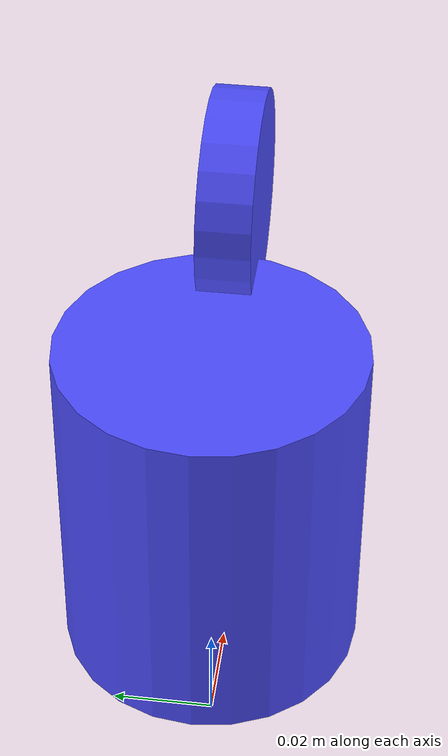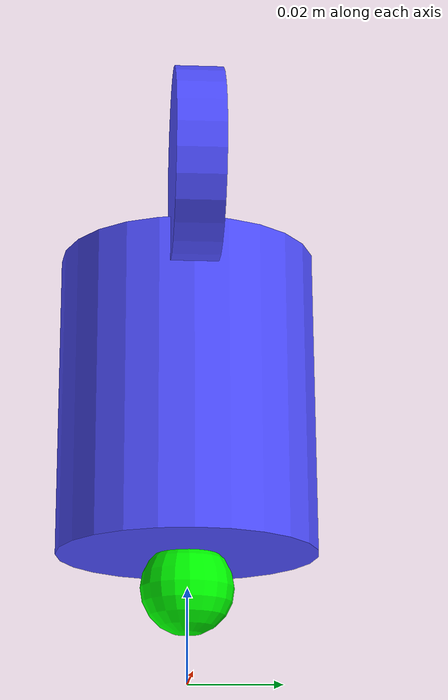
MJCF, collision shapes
<?xml version="1.0" encoding="utf-8"?>
<mujoco>
    <compiler angle="radian" inertiafromgeom="auto" inertiagrouprange="4 5"/>
    <asset>

        <material name="cm_col" rgba="0.3 0.3 1.0 0.5" shininess="0" specular="0"/>
        <material name="cmred" rgba="0.38 0.19 0.2 1" shininess="1" reflectance=".7" specular=".5"/>
        <material name="cmwhite" rgba=".85 .85 .85 1" shininess="1" reflectance=".7" specular=".5"/>
        <material name="cmgrey" rgba=".65 .65 .65 1" shininess="1" reflectance="1" specular=".5"/>

        <material name="cmblack" rgba=".2 .2 .2 1" shininess="1" reflectance=".7" specular=".5"/>

        <mesh file="../objects/meshes/coffeemachine/body1.stl" name="body1"/>
        <mesh file="../objects/meshes/coffeemachine/body2.stl" name="body2"/>
        <mesh file="../objects/meshes/coffeemachine/button.stl" name="button"/>
        <mesh file="../objects/meshes/coffeemachine/mug.stl" name="mug"/>
        <mesh file="../objects/meshes/coffeemachine/handle.stl" name="handle"/>
        <mesh file="../objects/meshes/coffeemachine/spout.stl" name="spout"/>
        <mesh file="../objects/meshes/coffeemachine/spoutconnect.stl" name="spoutconnect"/>
        <mesh file="../objects/meshes/coffeemachine/buttonring.stl" name="buttonring"/>
        <mesh file="../objects/meshes/coffeemachine/bodypiece1.stl" name="bodypiece1"/>

    </asset>
    <default>

      <default class="cm_base">
          <joint armature="0.001" damping="2" limited="true"/>
          <geom conaffinity="0" contype="0" group="1" type="mesh"/>
          <position ctrllimited="true" ctrlrange="0 1.57"/>
          <default class="cm_viz">
              <geom condim="4" type="mesh"/>
          </default>
          <default class="cm_col">
              <geom conaffinity="1" condim="3" contype="1" group="4" material="cm_col" solimp="0.99 0.99 0.01" solref="0.01 1"/>
          </default>
      </default>
    </default>

    <worldbody>
            <body childclass="cm_base" name="mug" pos = "0 0 .06">
                <joint type="free"/>
                <geom name="mug" mesh="mug" pos="0 0 0" material="cmwhite"/>
                <geom material="cmwhite" euler="1.571 0 0" mesh="handle" pos="0.039 0 0.013"/>
                <geom class="cm_col" pos="0 0 0" size="0.028 0.033" type="cylinder" mass=".1"/>
                <geom class="cm_col" euler="1.57 0 0" pos="0.034 0 0.042" size="0.02 0.005" type="cylinder" mass=".01"/>

                <site name="objSite" size="0.01" rgba="0 0 0 0"/>
            </body>
        <site name="mug_goal" pos="0 0 0.02" size="0.01" rgba="0 1 0 1"/>
    </worldbody>
</mujoco>
